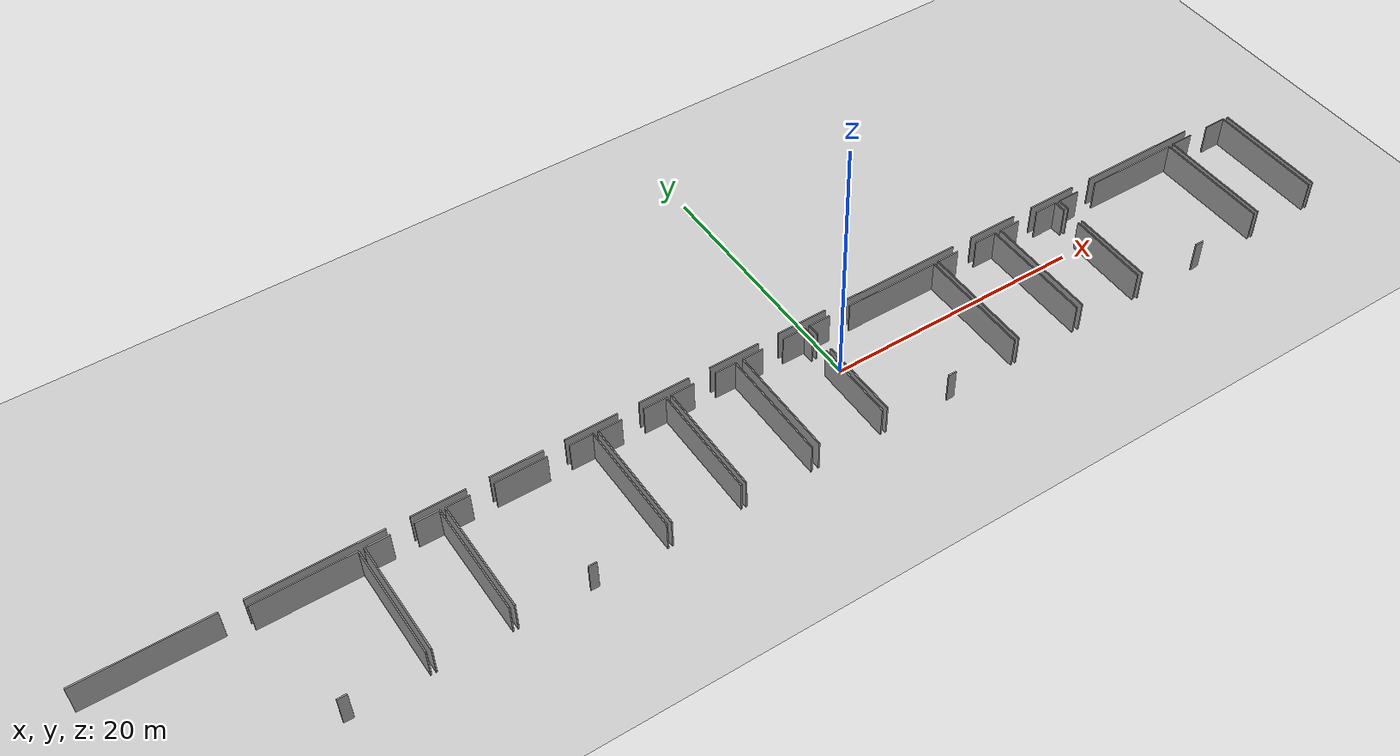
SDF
<sdf version="1.6">
 <world name="default">
  <model name="ground_plane">
   <static>1</static>
   <link name="link">
    <collision name="collision">
     <geometry><plane><normal>0 0 1</normal><size>100 100</size></plane></geometry>
     <surface><friction><ode><mu>100</mu><mu2>50</mu2></ode></friction></surface>
    </collision>
    <visual name="visual">
     <cast_shadows>0</cast_shadows>
     <geometry><plane><normal>0 0 1</normal><size>100 100</size></plane></geometry>
     <material>
      <script><uri>file://media/materials/scripts/gazebo.material</uri><name>Gazebo/Grey</name></script>
     </material>
    </visual>
   </link>
  </model>
  <model name="50015850_PLAN4">
   <static>1</static>
   <link name="Wall_7">
    <collision name="Wall_7_Collision">
     <geometry><box><size>9.56233741514 0.1 2.5</size></box></geometry>
     <pose>4.78116870757 0 1.25 0 0 0</pose>
    </collision>
    <visual name="Wall_7_Visual">
     <pose>4.78116870757 0 1.25 0 0 0</pose>
     <geometry><box><size>9.56233741514 0.1 2.5</size></box></geometry>
     <material>
      <script><uri>file://media/materials/scripts/gazebo.material</uri><name>Gazebo/Grey</name></script>
      <ambient>1 1 1 1</ambient>
     </material>
    </visual>
    <pose>121.449146628 -2.85164646913 0 0 0 3.14159265359</pose>
   </link>
   <link name="Wall_8">
    <collision name="Wall_8_Collision">
     <geometry><box><size>3.93249159317 0.1 2.5</size></box></geometry>
     <pose>1.96624579659 0 1.25 0 0 0</pose>
    </collision>
    <visual name="Wall_8_Visual">
     <pose>1.96624579659 0 1.25 0 0 0</pose>
     <geometry><box><size>3.93249159317 0.1 2.5</size></box></geometry>
     <material>
      <script><uri>file://media/materials/scripts/gazebo.material</uri><name>Gazebo/Grey</name></script>
      <ambient>1 1 1 1</ambient>
     </material>
    </visual>
    <pose>110.232599454 -2.85164646913 0 0 0 3.14159265359</pose>
   </link>
   <link name="Wall_9">
    <collision name="Wall_9_Collision">
     <geometry><box><size>3.94924179938 0.1 2.5</size></box></geometry>
     <pose>1.97462089969 0 1.25 0 0 0</pose>
    </collision>
    <visual name="Wall_9_Visual">
     <pose>1.97462089969 0 1.25 0 0 0</pose>
     <geometry><box><size>3.94924179938 0.1 2.5</size></box></geometry>
     <material>
      <script><uri>file://media/materials/scripts/gazebo.material</uri><name>Gazebo/Grey</name></script>
      <ambient>1 1 1 1</ambient>
     </material>
    </visual>
    <pose>104.665947592 -2.85164646913 0 0 0 3.14159265359</pose>
   </link>
   <link name="Wall_10">
    <collision name="Wall_10_Collision">
     <geometry><box><size>9.50929509549 0.1 2.5</size></box></geometry>
     <pose>4.75464754774 0 1.25 0 0 0</pose>
    </collision>
    <visual name="Wall_10_Visual">
     <pose>4.75464754774 0 1.25 0 0 0</pose>
     <geometry><box><size>9.50929509549 0.1 2.5</size></box></geometry>
     <material>
      <script><uri>file://media/materials/scripts/gazebo.material</uri><name>Gazebo/Grey</name></script>
      <ambient>1 1 1 1</ambient>
     </material>
    </visual>
    <pose>99.0693483916 -2.85164646913 0 0 0 3.14159265359</pose>
   </link>
   <link name="Wall_11">
    <collision name="Wall_11_Collision">
     <geometry><box><size>3.95482520145 0.1 2.5</size></box></geometry>
     <pose>1.97741260072 0 1.25 0 0 0</pose>
    </collision>
    <visual name="Wall_11_Visual">
     <pose>1.97741260072 0 1.25 0 0 0</pose>
     <geometry><box><size>3.95482520145 0.1 2.5</size></box></geometry>
     <material>
      <script><uri>file://media/materials/scripts/gazebo.material</uri><name>Gazebo/Grey</name></script>
      <ambient>1 1 1 1</ambient>
     </material>
    </visual>
    <pose>87.8746272445 -2.85164646913 0 0 0 3.14159265359</pose>
   </link>
   <link name="Wall_12">
    <collision name="Wall_12_Collision">
     <geometry><box><size>3.93883636825 0.1 2.5</size></box></geometry>
     <pose>1.96941818413 0 1.25 0 0 0</pose>
    </collision>
    <visual name="Wall_12_Visual">
     <pose>1.96941818413 0 1.25 0 0 0</pose>
     <geometry><box><size>3.93883636825 0.1 2.5</size></box></geometry>
     <material>
      <script><uri>file://media/materials/scripts/gazebo.material</uri><name>Gazebo/Grey</name></script>
      <ambient>1 1 1 1</ambient>
     </material>
    </visual>
    <pose>82.2820887 -2.85164646913 0 0 0 3.14159265359</pose>
   </link>
   <link name="Wall_13">
    <collision name="Wall_13_Collision">
     <geometry><box><size>3.96218514054 0.1 2.5</size></box></geometry>
     <pose>1.98109257027 0 1.25 0 0 0</pose>
    </collision>
    <visual name="Wall_13_Visual">
     <pose>1.98109257027 0 1.25 0 0 0</pose>
     <geometry><box><size>3.96218514054 0.1 2.5</size></box></geometry>
     <material>
      <script><uri>file://media/materials/scripts/gazebo.material</uri><name>Gazebo/Grey</name></script>
      <ambient>1 1 1 1</ambient>
     </material>
    </visual>
    <pose>76.6986866316 -2.85164646913 0 0 0 3.14159265359</pose>
   </link>
   <link name="Wall_14">
    <collision name="Wall_14_Collision">
     <geometry><box><size>4.00482202906 0.1 2.5</size></box></geometry>
     <pose>2.00241101453 0 1.25 0 0 0</pose>
    </collision>
    <visual name="Wall_14_Visual">
     <pose>2.00241101453 0 1.25 0 0 0</pose>
     <geometry><box><size>4.00482202906 0.1 2.5</size></box></geometry>
     <material>
      <script><uri>file://media/materials/scripts/gazebo.material</uri><name>Gazebo/Grey</name></script>
      <ambient>1 1 1 1</ambient>
     </material>
    </visual>
    <pose>71.0906668359 -2.85164646913 0 0 0 3.14159265359</pose>
   </link>
   <link name="Wall_15">
    <collision name="Wall_15_Collision">
     <geometry><box><size>3.95482520145 0.1 2.5</size></box></geometry>
     <pose>1.97741260072 0 1.25 0 0 0</pose>
    </collision>
    <visual name="Wall_15_Visual">
     <pose>1.97741260072 0 1.25 0 0 0</pose>
     <geometry><box><size>3.95482520145 0.1 2.5</size></box></geometry>
     <material>
      <script><uri>file://media/materials/scripts/gazebo.material</uri><name>Gazebo/Grey</name></script>
      <ambient>1 1 1 1</ambient>
     </material>
    </visual>
    <pose>65.5108178415 -2.85164646913 0 0 0 3.14159265359</pose>
   </link>
   <link name="Wall_16">
    <collision name="Wall_16_Collision">
     <geometry><box><size>3.96878370662 0.1 2.5</size></box></geometry>
     <pose>1.98439185331 0 1.25 0 0 0</pose>
    </collision>
    <visual name="Wall_16_Visual">
     <pose>1.98439185331 0 1.25 0 0 0</pose>
     <geometry><box><size>3.96878370662 0.1 2.5</size></box></geometry>
     <material>
      <script><uri>file://media/materials/scripts/gazebo.material</uri><name>Gazebo/Grey</name></script>
      <ambient>1 1 1 1</ambient>
     </material>
    </visual>
    <pose>59.8807182285 -2.85164646913 0 0 0 3.14159265359</pose>
   </link>
   <link name="Wall_17">
    <collision name="Wall_17_Collision">
     <geometry><box><size>9.53340524078 0.1 2.5</size></box></geometry>
     <pose>4.76670262039 0 1.25 0 0 0</pose>
    </collision>
    <visual name="Wall_17_Visual">
     <pose>4.76670262039 0 1.25 0 0 0</pose>
     <geometry><box><size>9.53340524078 0.1 2.5</size></box></geometry>
     <material>
      <script><uri>file://media/materials/scripts/gazebo.material</uri><name>Gazebo/Grey</name></script>
      <ambient>1 1 1 1</ambient>
     </material>
    </visual>
    <pose>54.2506186156 -2.85164646913 0 0 0 3.14159265359</pose>
   </link>
   <link name="Wall_18">
    <collision name="Wall_18_Collision">
     <geometry><box><size>9.56284499714 0.1 2.5</size></box></geometry>
     <pose>4.78142249857 0 1.25 0 0 0</pose>
    </collision>
    <visual name="Wall_18_Visual">
     <pose>4.78142249857 0 1.25 0 0 0</pose>
     <geometry><box><size>9.56284499714 0.1 2.5</size></box></geometry>
     <material>
      <script><uri>file://media/materials/scripts/gazebo.material</uri><name>Gazebo/Grey</name></script>
      <ambient>1 1 1 1</ambient>
     </material>
    </visual>
    <pose>43.1173148912 -2.85164646913 0 0 0 3.14159265359</pose>
   </link>
   <link name="Wall_78">
    <collision name="Wall_78_Collision">
     <geometry><box><size>0.706046570649 0.1 2.5</size></box></geometry>
     <pose>0.353023285325 0 1.25 0 0 0</pose>
    </collision>
    <visual name="Wall_78_Visual">
     <pose>0.353023285325 0 1.25 0 0 0</pose>
     <geometry><box><size>0.706046570649 0.1 2.5</size></box></geometry>
     <material>
      <script><uri>file://media/materials/scripts/gazebo.material</uri><name>Gazebo/Grey</name></script>
      <ambient>1 1 1 1</ambient>
     </material>
    </visual>
    <pose>47.0368631432 -12.4117759025 0 0 0 3.14159265359</pose>
   </link>
   <link name="Wall_81">
    <collision name="Wall_81_Collision">
     <geometry><box><size>7.34648816699 0.1 2.5</size></box></geometry>
     <pose>3.6732440835 0 1.25 0 0 0</pose>
    </collision>
    <visual name="Wall_81_Visual">
     <pose>3.6732440835 0 1.25 0 0 0</pose>
     <geometry><box><size>7.34648816699 0.1 2.5</size></box></geometry>
     <material>
      <script><uri>file://media/materials/scripts/gazebo.material</uri><name>Gazebo/Grey</name></script>
      <ambient>1 1 1 1</ambient>
     </material>
    </visual>
    <pose>44.7471607132 -3.44955269336 0 0 0 0.0</pose>
   </link>
   <link name="Wall_82">
    <collision name="Wall_82_Collision">
     <geometry><box><size>8.96226909331 0.1 2.5</size></box></geometry>
     <pose>4.48113454666 0 1.25 0 0 0</pose>
    </collision>
    <visual name="Wall_82_Visual">
     <pose>4.48113454666 0 1.25 0 0 0</pose>
     <geometry><box><size>8.96226909331 0.1 2.5</size></box></geometry>
     <material>
      <script><uri>file://media/materials/scripts/gazebo.material</uri><name>Gazebo/Grey</name></script>
      <ambient>1 1 1 1</ambient>
     </material>
    </visual>
    <pose>52.0936488801 -3.44955269336 0 0 0 -1.56759641927</pose>
   </link>
   <link name="Wall_83">
    <collision name="Wall_83_Collision">
     <geometry><box><size>9.00163695197 0.1 2.5</size></box></geometry>
     <pose>4.50081847599 0 1.25 0 0 0</pose>
    </collision>
    <visual name="Wall_83_Visual">
     <pose>4.50081847599 0 1.25 0 0 0</pose>
     <geometry><box><size>9.00163695197 0.1 2.5</size></box></geometry>
     <material>
      <script><uri>file://media/materials/scripts/gazebo.material</uri><name>Gazebo/Grey</name></script>
      <ambient>1 1 1 1</ambient>
     </material>
    </visual>
    <pose>52.492862128 -12.4204047966 0 0 0 1.57079632679</pose>
   </link>
   <link name="Wall_84">
    <collision name="Wall_84_Collision">
     <geometry><box><size>1.77374532073 0.1 2.5</size></box></geometry>
     <pose>0.886872660364 0 1.25 0 0 0</pose>
    </collision>
    <visual name="Wall_84_Visual">
     <pose>0.886872660364 0 1.25 0 0 0</pose>
     <geometry><box><size>1.77374532073 0.1 2.5</size></box></geometry>
     <material>
      <script><uri>file://media/materials/scripts/gazebo.material</uri><name>Gazebo/Grey</name></script>
      <ambient>1 1 1 1</ambient>
     </material>
    </visual>
    <pose>52.492862128 -3.41876784468 0 0 0 0.0</pose>
   </link>
   <link name="Wall_85">
    <collision name="Wall_85_Collision">
     <geometry><box><size>1.80216991308 0.1 2.5</size></box></geometry>
     <pose>0.901084956538 0 1.25 0 0 0</pose>
    </collision>
    <visual name="Wall_85_Visual">
     <pose>0.901084956538 0 1.25 0 0 0</pose>
     <geometry><box><size>1.80216991308 0.1 2.5</size></box></geometry>
     <material>
      <script><uri>file://media/materials/scripts/gazebo.material</uri><name>Gazebo/Grey</name></script>
      <ambient>1 1 1 1</ambient>
     </material>
    </visual>
    <pose>55.918786879 -3.41876784468 0 0 0 0.0</pose>
   </link>
   <link name="Wall_86">
    <collision name="Wall_86_Collision">
     <geometry><box><size>9.00165253631 0.1 2.5</size></box></geometry>
     <pose>4.50082626816 0 1.25 0 0 0</pose>
    </collision>
    <visual name="Wall_86_Visual">
     <pose>4.50082626816 0 1.25 0 0 0</pose>
     <geometry><box><size>9.00165253631 0.1 2.5</size></box></geometry>
     <material>
      <script><uri>file://media/materials/scripts/gazebo.material</uri><name>Gazebo/Grey</name></script>
      <ambient>1 1 1 1</ambient>
     </material>
    </visual>
    <pose>57.7209567921 -3.41876784468 0 0 0 -1.56893553337</pose>
   </link>
   <link name="Wall_87">
    <collision name="Wall_87_Collision">
     <geometry><box><size>0.636254044794 0.1 2.5</size></box></geometry>
     <pose>0.318127022397 0 1.25 0 0 0</pose>
    </collision>
    <visual name="Wall_87_Visual">
     <pose>0.318127022397 0 1.25 0 0 0</pose>
     <geometry><box><size>0.636254044794 0.1 2.5</size></box></geometry>
     <material>
      <script><uri>file://media/materials/scripts/gazebo.material</uri><name>Gazebo/Grey</name></script>
      <ambient>1 1 1 1</ambient>
     </material>
    </visual>
    <pose>63.83808134 -12.4313178098 0 0 0 3.14159265359</pose>
   </link>
   <link name="Wall_88">
    <collision name="Wall_88_Collision">
     <geometry><box><size>8.99704333481 0.1 2.5</size></box></geometry>
     <pose>4.49852166741 0 1.25 0 0 0</pose>
    </collision>
    <visual name="Wall_88_Visual">
     <pose>4.49852166741 0 1.25 0 0 0</pose>
     <geometry><box><size>8.99704333481 0.1 2.5</size></box></geometry>
     <material>
      <script><uri>file://media/materials/scripts/gazebo.material</uri><name>Gazebo/Grey</name></script>
      <ambient>1 1 1 1</ambient>
     </material>
    </visual>
    <pose>58.0996129687 -12.4313178098 0 0 0 1.57079632679</pose>
   </link>
   <link name="Wall_89">
    <collision name="Wall_89_Collision">
     <geometry><box><size>1.74455935537 0.1 2.5</size></box></geometry>
     <pose>0.872279677685 0 1.25 0 0 0</pose>
    </collision>
    <visual name="Wall_89_Visual">
     <pose>0.872279677685 0 1.25 0 0 0</pose>
     <geometry><box><size>1.74455935537 0.1 2.5</size></box></geometry>
     <material>
      <script><uri>file://media/materials/scripts/gazebo.material</uri><name>Gazebo/Grey</name></script>
      <ambient>1 1 1 1</ambient>
     </material>
    </visual>
    <pose>58.0996129687 -3.43427447497 0 0 0 0.0</pose>
   </link>
   <link name="Wall_90">
    <collision name="Wall_90_Collision">
     <geometry><box><size>3.90609732885 0.1 2.5</size></box></geometry>
     <pose>1.95304866442 0 1.25 0 0 0</pose>
    </collision>
    <visual name="Wall_90_Visual">
     <pose>1.95304866442 0 1.25 0 0 0</pose>
     <geometry><box><size>3.90609732885 0.1 2.5</size></box></geometry>
     <material>
      <script><uri>file://media/materials/scripts/gazebo.material</uri><name>Gazebo/Grey</name></script>
      <ambient>1 1 1 1</ambient>
     </material>
    </visual>
    <pose>61.5669056532 -3.43427447497 0 0 0 0.0</pose>
   </link>
   <link name="Wall_91">
    <collision name="Wall_91_Collision">
     <geometry><box><size>1.78846519891 0.1 2.5</size></box></geometry>
     <pose>0.894232599454 0 1.25 0 0 0</pose>
    </collision>
    <visual name="Wall_91_Visual">
     <pose>0.894232599454 0 1.25 0 0 0</pose>
     <geometry><box><size>1.78846519891 0.1 2.5</size></box></geometry>
     <material>
      <script><uri>file://media/materials/scripts/gazebo.material</uri><name>Gazebo/Grey</name></script>
      <ambient>1 1 1 1</ambient>
     </material>
    </visual>
    <pose>67.1076708331 -3.43427447497 0 0 0 0.0</pose>
   </link>
   <link name="Wall_92">
    <collision name="Wall_92_Collision">
     <geometry><box><size>8.99707042803 0.1 2.5</size></box></geometry>
     <pose>4.49853521401 0 1.25 0 0 0</pose>
    </collision>
    <visual name="Wall_92_Visual">
     <pose>4.49853521401 0 1.25 0 0 0</pose>
     <geometry><box><size>8.99707042803 0.1 2.5</size></box></geometry>
     <material>
      <script><uri>file://media/materials/scripts/gazebo.material</uri><name>Gazebo/Grey</name></script>
      <ambient>1 1 1 1</ambient>
     </material>
    </visual>
    <pose>68.896136032 -3.43427447497 0 0 0 -1.56834221247</pose>
   </link>
   <link name="Wall_93">
    <collision name="Wall_93_Collision">
     <geometry><box><size>8.97897341539 0.1 2.5</size></box></geometry>
     <pose>4.4894867077 0 1.25 0 0 0</pose>
    </collision>
    <visual name="Wall_93_Visual">
     <pose>4.4894867077 0 1.25 0 0 0</pose>
     <geometry><box><size>8.97897341539 0.1 2.5</size></box></geometry>
     <material>
      <script><uri>file://media/materials/scripts/gazebo.material</uri><name>Gazebo/Grey</name></script>
      <ambient>1 1 1 1</ambient>
     </material>
    </visual>
    <pose>69.2732694626 -12.4285261087 0 0 0 1.57079632679</pose>
   </link>
   <link name="Wall_94">
    <collision name="Wall_94_Collision">
     <geometry><box><size>1.77526806675 0.1 2.5</size></box></geometry>
     <pose>0.887634033374 0 1.25 0 0 0</pose>
    </collision>
    <visual name="Wall_94_Visual">
     <pose>0.887634033374 0 1.25 0 0 0</pose>
     <geometry><box><size>1.77526806675 0.1 2.5</size></box></geometry>
     <material>
      <script><uri>file://media/materials/scripts/gazebo.material</uri><name>Gazebo/Grey</name></script>
      <ambient>1 1 1 1</ambient>
     </material>
    </visual>
    <pose>69.2732694626 -3.44955269336 0 0 0 0.0</pose>
   </link>
   <link name="Wall_95">
    <collision name="Wall_95_Collision">
     <geometry><box><size>1.75572615951 0.1 2.5</size></box></geometry>
     <pose>0.877863079754 0 1.25 0 0 0</pose>
    </collision>
    <visual name="Wall_95_Visual">
     <pose>0.877863079754 0 1.25 0 0 0</pose>
     <geometry><box><size>1.75572615951 0.1 2.5</size></box></geometry>
     <material>
      <script><uri>file://media/materials/scripts/gazebo.material</uri><name>Gazebo/Grey</name></script>
      <ambient>1 1 1 1</ambient>
     </material>
    </visual>
    <pose>72.737262864 -3.44955269336 0 0 0 0.0</pose>
   </link>
   <link name="Wall_96">
    <collision name="Wall_96_Collision">
     <geometry><box><size>8.97899099023 0.1 2.5</size></box></geometry>
     <pose>4.48949549512 0 1.25 0 0 0</pose>
    </collision>
    <visual name="Wall_96_Visual">
     <pose>4.48949549512 0 1.25 0 0 0</pose>
     <geometry><box><size>8.97899099023 0.1 2.5</size></box></geometry>
     <material>
      <script><uri>file://media/materials/scripts/gazebo.material</uri><name>Gazebo/Grey</name></script>
      <ambient>1 1 1 1</ambient>
     </material>
    </visual>
    <pose>74.4929890235 -3.44955269336 0 0 0 -1.56881777689</pose>
   </link>
   <link name="Wall_97">
    <collision name="Wall_97_Collision">
     <geometry><box><size>8.98265338494 0.1 2.5</size></box></geometry>
     <pose>4.49132669247 0 1.25 0 0 0</pose>
    </collision>
    <visual name="Wall_97_Visual">
     <pose>4.49132669247 0 1.25 0 0 0</pose>
     <geometry><box><size>8.98265338494 0.1 2.5</size></box></geometry>
     <material>
      <script><uri>file://media/materials/scripts/gazebo.material</uri><name>Gazebo/Grey</name></script>
      <ambient>1 1 1 1</ambient>
     </material>
    </visual>
    <pose>74.8759596472 -12.4399467039 0 0 0 1.57079632679</pose>
   </link>
   <link name="Wall_98">
    <collision name="Wall_98_Collision">
     <geometry><box><size>1.79227206396 0.1 2.5</size></box></geometry>
     <pose>0.896136031978 0 1.25 0 0 0</pose>
    </collision>
    <visual name="Wall_98_Visual">
     <pose>0.896136031978 0 1.25 0 0 0</pose>
     <geometry><box><size>1.79227206396 0.1 2.5</size></box></geometry>
     <material>
      <script><uri>file://media/materials/scripts/gazebo.material</uri><name>Gazebo/Grey</name></script>
      <ambient>1 1 1 1</ambient>
     </material>
    </visual>
    <pose>74.8759596472 -3.45729331895 0 0 0 0.0</pose>
   </link>
   <link name="Wall_99">
    <collision name="Wall_99_Collision">
     <geometry><box><size>1.63974367109 0.1 2.5</size></box></geometry>
     <pose>0.819871835543 0 1.25 0 0 0</pose>
    </collision>
    <visual name="Wall_99_Visual">
     <pose>0.819871835543 0 1.25 0 0 0</pose>
     <geometry><box><size>1.63974367109 0.1 2.5</size></box></geometry>
     <material>
      <script><uri>file://media/materials/scripts/gazebo.material</uri><name>Gazebo/Grey</name></script>
      <ambient>1 1 1 1</ambient>
     </material>
    </visual>
    <pose>78.367362477 -3.45729331895 0 0 0 0.0</pose>
   </link>
   <link name="Wall_100">
    <collision name="Wall_100_Collision">
     <geometry><box><size>8.98266503336 0.1 2.5</size></box></geometry>
     <pose>4.49133251668 0 1.25 0 0 0</pose>
    </collision>
    <visual name="Wall_100_Visual">
     <pose>4.49133251668 0 1.25 0 0 0</pose>
     <geometry><box><size>8.98266503336 0.1 2.5</size></box></geometry>
     <material>
      <script><uri>file://media/materials/scripts/gazebo.material</uri><name>Gazebo/Grey</name></script>
      <ambient>1 1 1 1</ambient>
     </material>
    </visual>
    <pose>80.0071061481 -3.45729331895 0 0 0 -1.56918588119</pose>
   </link>
   <link name="Wall_101">
    <collision name="Wall_101_Collision">
     <geometry><box><size>8.97275553582 0.1 2.5</size></box></geometry>
     <pose>4.48637776791 0 1.25 0 0 0</pose>
    </collision>
    <visual name="Wall_101_Visual">
     <pose>4.48637776791 0 1.25 0 0 0</pose>
     <geometry><box><size>8.97275553582 0.1 2.5</size></box></geometry>
     <material>
      <script><uri>file://media/materials/scripts/gazebo.material</uri><name>Gazebo/Grey</name></script>
      <ambient>1 1 1 1</ambient>
     </material>
    </visual>
    <pose>80.6050377514 -12.4160903496 0 0 0 1.57079632679</pose>
   </link>
   <link name="Wall_102">
    <collision name="Wall_102_Collision">
     <geometry><box><size>1.63796713407 0.1 2.5</size></box></geometry>
     <pose>0.818983567033 0 1.25 0 0 0</pose>
    </collision>
    <visual name="Wall_102_Visual">
     <pose>0.818983567033 0 1.25 0 0 0</pose>
     <geometry><box><size>1.63796713407 0.1 2.5</size></box></geometry>
     <material>
      <script><uri>file://media/materials/scripts/gazebo.material</uri><name>Gazebo/Grey</name></script>
      <ambient>1 1 1 1</ambient>
     </material>
    </visual>
    <pose>80.6050377514 -3.44333481378 0 0 0 0.0</pose>
   </link>
   <link name="Wall_103">
    <collision name="Wall_103_Collision">
     <geometry><box><size>1.81029122518 0.1 2.5</size></box></geometry>
     <pose>0.905145612588 0 1.25 0 0 0</pose>
    </collision>
    <visual name="Wall_103_Visual">
     <pose>0.905145612588 0 1.25 0 0 0</pose>
     <geometry><box><size>1.81029122518 0.1 2.5</size></box></geometry>
     <material>
      <script><uri>file://media/materials/scripts/gazebo.material</uri><name>Gazebo/Grey</name></script>
      <ambient>1 1 1 1</ambient>
     </material>
    </visual>
    <pose>83.9060973288 -3.44333481378 0 0 0 0.0</pose>
   </link>
   <link name="Wall_104">
    <collision name="Wall_104_Collision">
     <geometry><box><size>1.00036799695 0.1 2.5</size></box></geometry>
     <pose>0.500183998477 0 1.25 0 0 0</pose>
    </collision>
    <visual name="Wall_104_Visual">
     <pose>0.500183998477 0 1.25 0 0 0</pose>
     <geometry><box><size>1.00036799695 0.1 2.5</size></box></geometry>
     <material>
      <script><uri>file://media/materials/scripts/gazebo.material</uri><name>Gazebo/Grey</name></script>
      <ambient>1 1 1 1</ambient>
     </material>
    </visual>
    <pose>85.716388554 -3.44333481378 0 0 0 -1.57079632679</pose>
   </link>
   <link name="Wall_105">
    <collision name="Wall_105_Collision">
     <geometry><box><size>6.43630670406 0.1 2.5</size></box></geometry>
     <pose>3.21815335203 0 1.25 0 0 0</pose>
    </collision>
    <visual name="Wall_105_Visual">
     <pose>3.21815335203 0 1.25 0 0 0</pose>
     <geometry><box><size>6.43630670406 0.1 2.5</size></box></geometry>
     <material>
      <script><uri>file://media/materials/scripts/gazebo.material</uri><name>Gazebo/Grey</name></script>
      <ambient>1 1 1 1</ambient>
     </material>
    </visual>
    <pose>85.716388554 -5.97979823615 0 0 0 -1.57292561074</pose>
   </link>
   <link name="Wall_106">
    <collision name="Wall_106_Collision">
     <geometry><box><size>0.643360192881 0.1 2.5</size></box></geometry>
     <pose>0.321680096441 0 1.25 0 0 0</pose>
    </collision>
    <visual name="Wall_106_Visual">
     <pose>0.321680096441 0 1.25 0 0 0</pose>
     <geometry><box><size>0.643360192881 0.1 2.5</size></box></geometry>
     <material>
      <script><uri>file://media/materials/scripts/gazebo.material</uri><name>Gazebo/Grey</name></script>
      <ambient>1 1 1 1</ambient>
     </material>
    </visual>
    <pose>91.8223462978 -12.4412156589 0 0 0 3.14159265359</pose>
   </link>
   <link name="Wall_107">
    <collision name="Wall_107_Collision">
     <geometry><box><size>6.42941437726 0.1 2.5</size></box></geometry>
     <pose>3.21470718863 0 1.25 0 0 0</pose>
    </collision>
    <visual name="Wall_107_Visual">
     <pose>3.21470718863 0 1.25 0 0 0</pose>
     <geometry><box><size>6.42941437726 0.1 2.5</size></box></geometry>
     <material>
      <script><uri>file://media/materials/scripts/gazebo.material</uri><name>Gazebo/Grey</name></script>
      <ambient>1 1 1 1</ambient>
     </material>
    </visual>
    <pose>86.0937757756 -12.4412156589 0 0 0 1.57079632679</pose>
   </link>
   <link name="Wall_108">
    <collision name="Wall_108_Collision">
     <geometry><box><size>0.971588097202 0.1 2.5</size></box></geometry>
     <pose>0.485794048601 0 1.25 0 0 0</pose>
    </collision>
    <visual name="Wall_108_Visual">
     <pose>0.485794048601 0 1.25 0 0 0</pose>
     <geometry><box><size>0.971588097202 0.1 2.5</size></box></geometry>
     <material>
      <script><uri>file://media/materials/scripts/gazebo.material</uri><name>Gazebo/Grey</name></script>
      <ambient>1 1 1 1</ambient>
     </material>
    </visual>
    <pose>86.0937757756 -4.42888141615 0 0 0 1.57079632679</pose>
   </link>
   <link name="Wall_109">
    <collision name="Wall_109_Collision">
     <geometry><box><size>1.70344521287 0.1 2.5</size></box></geometry>
     <pose>0.851722606434 0 1.25 0 0 0</pose>
    </collision>
    <visual name="Wall_109_Visual">
     <pose>0.851722606434 0 1.25 0 0 0</pose>
     <geometry><box><size>1.70344521287 0.1 2.5</size></box></geometry>
     <material>
      <script><uri>file://media/materials/scripts/gazebo.material</uri><name>Gazebo/Grey</name></script>
      <ambient>1 1 1 1</ambient>
     </material>
    </visual>
    <pose>86.0937757756 -3.45729331895 0 0 0 0.0</pose>
   </link>
   <link name="Wall_110">
    <collision name="Wall_110_Collision">
     <geometry><box><size>7.38151132542 0.1 2.5</size></box></geometry>
     <pose>3.69075566271 0 1.25 0 0 0</pose>
    </collision>
    <visual name="Wall_110_Visual">
     <pose>3.69075566271 0 1.25 0 0 0</pose>
     <geometry><box><size>7.38151132542 0.1 2.5</size></box></geometry>
     <material>
      <script><uri>file://media/materials/scripts/gazebo.material</uri><name>Gazebo/Grey</name></script>
      <ambient>1 1 1 1</ambient>
     </material>
    </visual>
    <pose>89.5006662014 -3.45729331895 0 0 0 0.0</pose>
   </link>
   <link name="Wall_111">
    <collision name="Wall_111_Collision">
     <geometry><box><size>8.98393130177 0.1 2.5</size></box></geometry>
     <pose>4.49196565089 0 1.25 0 0 0</pose>
    </collision>
    <visual name="Wall_111_Visual">
     <pose>4.49196565089 0 1.25 0 0 0</pose>
     <geometry><box><size>8.98393130177 0.1 2.5</size></box></geometry>
     <material>
      <script><uri>file://media/materials/scripts/gazebo.material</uri><name>Gazebo/Grey</name></script>
      <ambient>1 1 1 1</ambient>
     </material>
    </visual>
    <pose>96.8821775268 -3.45729331895 0 0 0 -1.56938385447</pose>
   </link>
   <link name="Wall_112">
    <collision name="Wall_112_Collision">
     <geometry><box><size>9.01016432967 0.1 2.5</size></box></geometry>
     <pose>4.50508216484 0 1.25 0 0 0</pose>
    </collision>
    <visual name="Wall_112_Visual">
     <pose>4.50508216484 0 1.25 0 0 0</pose>
     <geometry><box><size>9.01016432967 0.1 2.5</size></box></geometry>
     <material>
      <script><uri>file://media/materials/scripts/gazebo.material</uri><name>Gazebo/Grey</name></script>
      <ambient>1 1 1 1</ambient>
     </material>
    </visual>
    <pose>97.2590571664 -12.4422308229 0 0 0 1.57079632679</pose>
   </link>
   <link name="Wall_113">
    <collision name="Wall_113_Collision">
     <geometry><box><size>1.78085146882 0.1 2.5</size></box></geometry>
     <pose>0.890425734408 0 1.25 0 0 0</pose>
    </collision>
    <visual name="Wall_113_Visual">
     <pose>0.890425734408 0 1.25 0 0 0</pose>
     <geometry><box><size>1.78085146882 0.1 2.5</size></box></geometry>
     <material>
      <script><uri>file://media/materials/scripts/gazebo.material</uri><name>Gazebo/Grey</name></script>
      <ambient>1 1 1 1</ambient>
     </material>
    </visual>
    <pose>97.2590571664 -3.43206649324 0 0 0 0.0</pose>
   </link>
   <link name="Wall_114">
    <collision name="Wall_114_Collision">
     <geometry><box><size>1.74126007233 0.1 2.5</size></box></geometry>
     <pose>0.870630036165 0 1.25 0 0 0</pose>
    </collision>
    <visual name="Wall_114_Visual">
     <pose>0.870630036165 0 1.25 0 0 0</pose>
     <geometry><box><size>1.74126007233 0.1 2.5</size></box></geometry>
     <material>
      <script><uri>file://media/materials/scripts/gazebo.material</uri><name>Gazebo/Grey</name></script>
      <ambient>1 1 1 1</ambient>
     </material>
    </visual>
    <pose>100.699194214 -3.43206649324 0 0 0 0.0</pose>
   </link>
   <link name="Wall_115">
    <collision name="Wall_115_Collision">
     <geometry><box><size>9.0101646871 0.1 2.5</size></box></geometry>
     <pose>4.50508234355 0 1.25 0 0 0</pose>
    </collision>
    <visual name="Wall_115_Visual">
     <pose>4.50508234355 0 1.25 0 0 0</pose>
     <geometry><box><size>9.0101646871 0.1 2.5</size></box></geometry>
     <material>
      <script><uri>file://media/materials/scripts/gazebo.material</uri><name>Gazebo/Grey</name></script>
      <ambient>1 1 1 1</ambient>
     </material>
    </visual>
    <pose>102.440454286 -3.43206649324 0 0 0 -1.57107799868</pose>
   </link>
   <link name="Wall_116">
    <collision name="Wall_116_Collision">
     <geometry><box><size>9.00788021065 0.1 2.5</size></box></geometry>
     <pose>4.50394010532 0 1.25 0 0 0</pose>
    </collision>
    <visual name="Wall_116_Visual">
     <pose>4.50394010532 0 1.25 0 0 0</pose>
     <geometry><box><size>9.00788021065 0.1 2.5</size></box></geometry>
     <material>
      <script><uri>file://media/materials/scripts/gazebo.material</uri><name>Gazebo/Grey</name></script>
      <ambient>1 1 1 1</ambient>
     </material>
    </visual>
    <pose>102.948290083 -12.4399467039 0 0 0 1.57079632679</pose>
   </link>
   <link name="Wall_117">
    <collision name="Wall_117_Collision">
     <geometry><box><size>1.67299029249 0.1 2.5</size></box></geometry>
     <pose>0.836495146247 0 1.25 0 0 0</pose>
    </collision>
    <visual name="Wall_117_Visual">
     <pose>0.836495146247 0 1.25 0 0 0</pose>
     <geometry><box><size>1.67299029249 0.1 2.5</size></box></geometry>
     <material>
      <script><uri>file://media/materials/scripts/gazebo.material</uri><name>Gazebo/Grey</name></script>
      <ambient>1 1 1 1</ambient>
     </material>
    </visual>
    <pose>102.948290083 -3.43206649324 0 0 0 0.0</pose>
   </link>
   <link name="Wall_118">
    <collision name="Wall_118_Collision">
     <geometry><box><size>1.79937821204 0.1 2.5</size></box></geometry>
     <pose>0.899689106021 0 1.25 0 0 0</pose>
    </collision>
    <visual name="Wall_118_Visual">
     <pose>0.899689106021 0 1.25 0 0 0</pose>
     <geometry><box><size>1.79937821204 0.1 2.5</size></box></geometry>
     <material>
      <script><uri>file://media/materials/scripts/gazebo.material</uri><name>Gazebo/Grey</name></script>
      <ambient>1 1 1 1</ambient>
     </material>
    </visual>
    <pose>106.314573948 -3.43206649324 0 0 0 0.0</pose>
   </link>
   <link name="Wall_119">
    <collision name="Wall_119_Collision">
     <geometry><box><size>0.983567032549 0.1 2.5</size></box></geometry>
     <pose>0.491783516274 0 1.25 0 0 0</pose>
    </collision>
    <visual name="Wall_119_Visual">
     <pose>0.491783516274 0 1.25 0 0 0</pose>
     <geometry><box><size>0.983567032549 0.1 2.5</size></box></geometry>
     <material>
      <script><uri>file://media/materials/scripts/gazebo.material</uri><name>Gazebo/Grey</name></script>
      <ambient>1 1 1 1</ambient>
     </material>
    </visual>
    <pose>108.11395216 -3.43206649324 0 0 0 -1.57079632679</pose>
   </link>
   <link name="Wall_120">
    <collision name="Wall_120_Collision">
     <geometry><box><size>6.45898871764 0.1 2.5</size></box></geometry>
     <pose>3.22949435882 0 1.25 0 0 0</pose>
    </collision>
    <visual name="Wall_120_Visual">
     <pose>3.22949435882 0 1.25 0 0 0</pose>
     <geometry><box><size>6.45898871764 0.1 2.5</size></box></geometry>
     <material>
      <script><uri>file://media/materials/scripts/gazebo.material</uri><name>Gazebo/Grey</name></script>
      <ambient>1 1 1 1</ambient>
     </material>
    </visual>
    <pose>108.11395216 -5.98121946577 0 0 0 -1.57979447287</pose>
   </link>
   <link name="Wall_121">
    <collision name="Wall_121_Collision">
     <geometry><box><size>0.680159888332 0.1 2.5</size></box></geometry>
     <pose>0.340079944166 0 1.25 0 0 0</pose>
    </collision>
    <visual name="Wall_121_Visual">
     <pose>0.340079944166 0 1.25 0 0 0</pose>
     <geometry><box><size>0.680159888332 0.1 2.5</size></box></geometry>
     <material>
      <script><uri>file://media/materials/scripts/gazebo.material</uri><name>Gazebo/Grey</name></script>
      <ambient>1 1 1 1</ambient>
     </material>
    </visual>
    <pose>114.243766258 -12.4643106402 0 0 0 3.14159265359</pose>
   </link>
   <link name="Wall_122">
    <collision name="Wall_122_Collision">
     <geometry><box><size>6.48342110272 0.1 2.5</size></box></geometry>
     <pose>3.24171055136 0 1.25 0 0 0</pose>
    </collision>
    <visual name="Wall_122_Visual">
     <pose>3.24171055136 0 1.25 0 0 0</pose>
     <geometry><box><size>6.48342110272 0.1 2.5</size></box></geometry>
     <material>
      <script><uri>file://media/materials/scripts/gazebo.material</uri><name>Gazebo/Grey</name></script>
      <ambient>1 1 1 1</ambient>
     </material>
    </visual>
    <pose>108.461645835 -12.4643106402 0 0 0 1.57079632679</pose>
   </link>
   <link name="Wall_123">
    <collision name="Wall_123_Collision">
     <geometry><box><size>1.0203921071 0.1 2.5</size></box></geometry>
     <pose>0.51019605355 0 1.25 0 0 0</pose>
    </collision>
    <visual name="Wall_123_Visual">
     <pose>0.51019605355 0 1.25 0 0 0</pose>
     <geometry><box><size>1.0203921071 0.1 2.5</size></box></geometry>
     <material>
      <script><uri>file://media/materials/scripts/gazebo.material</uri><name>Gazebo/Grey</name></script>
      <ambient>1 1 1 1</ambient>
     </material>
    </visual>
    <pose>108.461645835 -4.4656303534 0 0 0 1.57079632679</pose>
   </link>
   <link name="Wall_124">
    <collision name="Wall_124_Collision">
     <geometry><box><size>1.78846519891 0.1 2.5</size></box></geometry>
     <pose>0.894232599454 0 1.25 0 0 0</pose>
    </collision>
    <visual name="Wall_124_Visual">
     <pose>0.894232599454 0 1.25 0 0 0</pose>
     <geometry><box><size>1.78846519891 0.1 2.5</size></box></geometry>
     <material>
      <script><uri>file://media/materials/scripts/gazebo.material</uri><name>Gazebo/Grey</name></script>
      <ambient>1 1 1 1</ambient>
     </material>
    </visual>
    <pose>108.461645835 -3.4452382463 0 0 0 0.0</pose>
   </link>
   <link name="Wall_125">
    <collision name="Wall_125_Collision">
     <geometry><box><size>7.35029503204 0.1 2.5</size></box></geometry>
     <pose>3.67514751602 0 1.25 0 0 0</pose>
    </collision>
    <visual name="Wall_125_Visual">
     <pose>3.67514751602 0 1.25 0 0 0</pose>
     <geometry><box><size>7.35029503204 0.1 2.5</size></box></geometry>
     <material>
      <script><uri>file://media/materials/scripts/gazebo.material</uri><name>Gazebo/Grey</name></script>
      <ambient>1 1 1 1</ambient>
     </material>
    </visual>
    <pose>111.89619948 -3.4452382463 0 0 0 0.0</pose>
   </link>
   <link name="Wall_126">
    <collision name="Wall_126_Collision">
     <geometry><box><size>9.01918174772 0.1 2.5</size></box></geometry>
     <pose>4.50959087386 0 1.25 0 0 0</pose>
    </collision>
    <visual name="Wall_126_Visual">
     <pose>4.50959087386 0 1.25 0 0 0</pose>
     <geometry><box><size>9.01918174772 0.1 2.5</size></box></geometry>
     <material>
      <script><uri>file://media/materials/scripts/gazebo.material</uri><name>Gazebo/Grey</name></script>
      <ambient>1 1 1 1</ambient>
     </material>
    </visual>
    <pose>119.246494512 -3.4452382463 0 0 0 -1.56587197708</pose>
   </link>
   <link name="Wall_127">
    <collision name="Wall_127_Collision">
     <geometry><box><size>9.03232028425 0.1 2.5</size></box></geometry>
     <pose>4.51616014212 0 1.25 0 0 0</pose>
    </collision>
    <visual name="Wall_127_Visual">
     <pose>4.51616014212 0 1.25 0 0 0</pose>
     <geometry><box><size>9.03232028425 0.1 2.5</size></box></geometry>
     <material>
      <script><uri>file://media/materials/scripts/gazebo.material</uri><name>Gazebo/Grey</name></script>
      <ambient>1 1 1 1</ambient>
     </material>
    </visual>
    <pose>119.670071696 -12.4665947592 0 0 0 1.57079632679</pose>
   </link>
   <link name="Wall_128">
    <collision name="Wall_128_Collision">
     <geometry><box><size>1.78237421483 0.1 2.5</size></box></geometry>
     <pose>0.891187107417 0 1.25 0 0 0</pose>
    </collision>
    <visual name="Wall_128_Visual">
     <pose>0.891187107417 0 1.25 0 0 0</pose>
     <geometry><box><size>1.78237421483 0.1 2.5</size></box></geometry>
     <material>
      <script><uri>file://media/materials/scripts/gazebo.material</uri><name>Gazebo/Grey</name></script>
      <ambient>1 1 1 1</ambient>
     </material>
    </visual>
    <pose>119.670071696 -3.43427447497 0 0 0 0.0</pose>
   </link>
   <link name="Wall_129">
    <collision name="Wall_129_Collision">
     <geometry><box><size>1.74126007233 0.1 2.5</size></box></geometry>
     <pose>0.870630036165 0 1.25 0 0 0</pose>
    </collision>
    <visual name="Wall_129_Visual">
     <pose>0.870630036165 0 1.25 0 0 0</pose>
     <geometry><box><size>1.74126007233 0.1 2.5</size></box></geometry>
     <material>
      <script><uri>file://media/materials/scripts/gazebo.material</uri><name>Gazebo/Grey</name></script>
      <ambient>1 1 1 1</ambient>
     </material>
    </visual>
    <pose>123.088890299 -3.43427447497 0 0 0 0.0</pose>
   </link>
   <link name="Wall_130">
    <collision name="Wall_130_Collision">
     <geometry><box><size>9.03232992541 0.1 2.5</size></box></geometry>
     <pose>4.51616496271 0 1.25 0 0 0</pose>
    </collision>
    <visual name="Wall_130_Visual">
     <pose>4.51616496271 0 1.25 0 0 0</pose>
     <geometry><box><size>9.03232992541 0.1 2.5</size></box></geometry>
     <material>
      <script><uri>file://media/materials/scripts/gazebo.material</uri><name>Gazebo/Grey</name></script>
      <ambient>1 1 1 1</ambient>
     </material>
    </visual>
    <pose>124.830150371 -3.43427447497 0 0 0 -1.56933522684</pose>
   </link>
   <link name="Wall_132">
    <collision name="Wall_132_Collision">
     <geometry><box><size>8.99653575281 0.1 2.5</size></box></geometry>
     <pose>4.4982678764 0 1.25 0 0 0</pose>
    </collision>
    <visual name="Wall_132_Visual">
     <pose>4.4982678764 0 1.25 0 0 0</pose>
     <geometry><box><size>8.99653575281 0.1 2.5</size></box></geometry>
     <material>
      <script><uri>file://media/materials/scripts/gazebo.material</uri><name>Gazebo/Grey</name></script>
      <ambient>1 1 1 1</ambient>
     </material>
    </visual>
    <pose>125.248905526 -12.4412156589 0 0 0 1.57079632679</pose>
   </link>
   <pose>-86.8 6.31404733202 0 0 0 0</pose>
  </model>
 </world>
</sdf>
